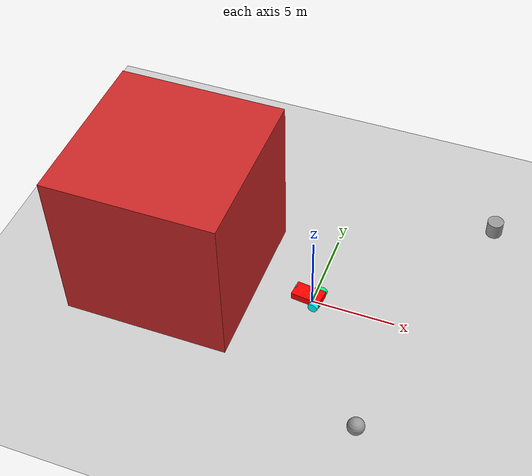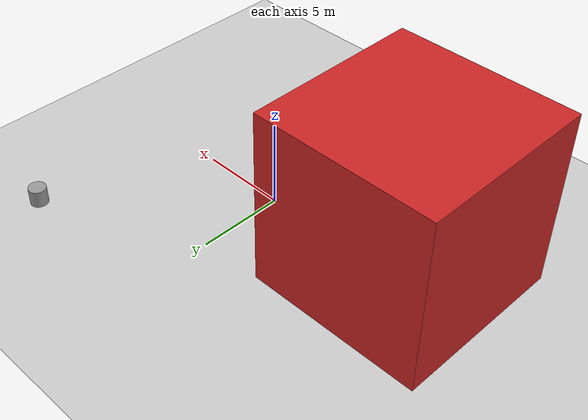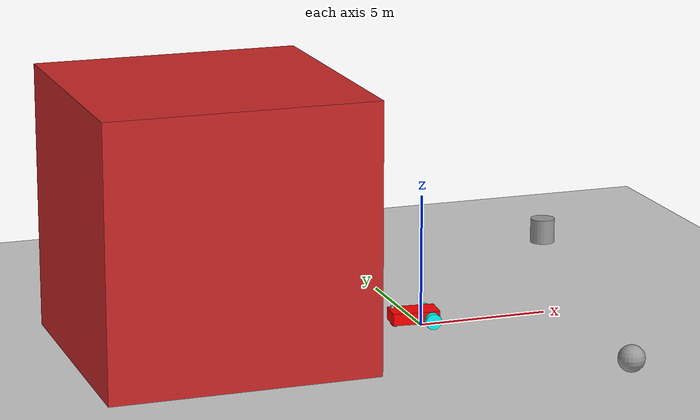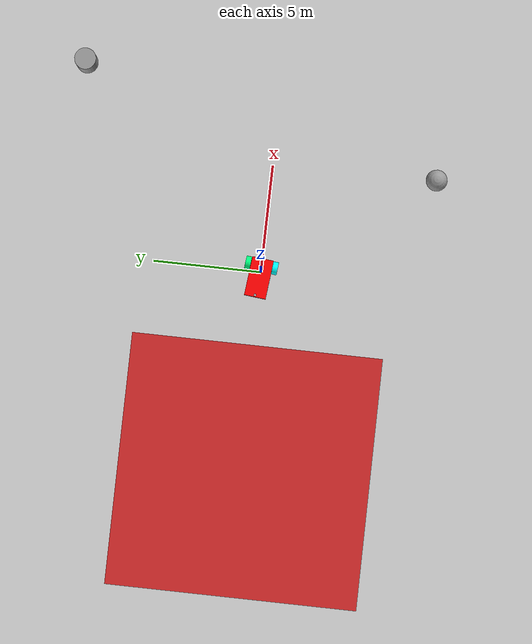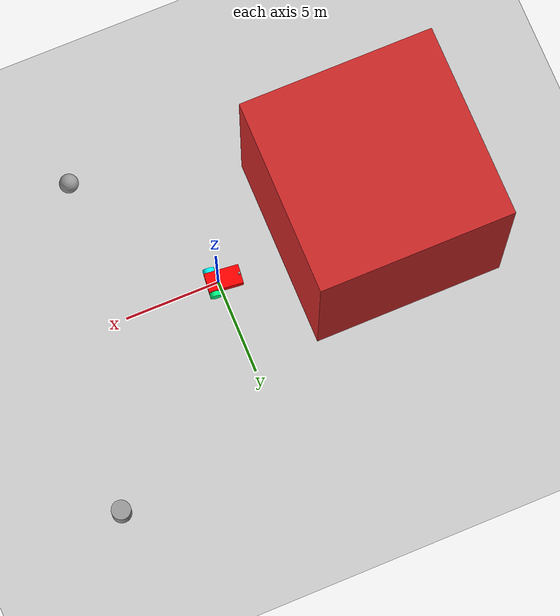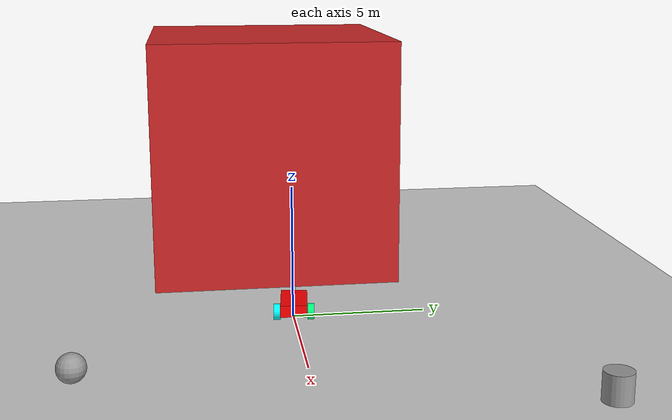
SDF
<sdf version="1.6">
 <world name="default">
  <model name="ground_plane">
   <static>1</static>
   <link name="link">
    <collision name="collision">
     <geometry><plane><normal>0 0 1</normal><size>100 100</size></plane></geometry>
     <surface>
      <contact><collide_bitmask>65535</collide_bitmask></contact>
      <friction><ode><mu>100</mu><mu2>50</mu2></ode></friction>
     </surface>
    </collision>
    <visual name="visual">
     <cast_shadows>0</cast_shadows>
     <geometry><plane><normal>0 0 1</normal><size>100 100</size></plane></geometry>
     <material>
      <script><uri>file://media/materials/scripts/gazebo.material</uri><name>Gazebo/Grey</name></script>
     </material>
    </visual>
   </link>
  </model>
  <model name="differential_drive_robot">
   <pose>-0.030289 0.036513 0.364824 0 -1.3e-05 -0.104539</pose>
   <link name="differential_drive_robot::link_0">
    <inertial>
     <mass>0.811541</mass>
     <inertia>
      <ixx>0.0813018</ixx>
      <ixy>0</ixy>
      <ixz>0</ixz>
      <iyy>0.233992</iyy>
      <iyz>0</iyz>
      <izz>0.287947</izz>
     </inertia>
    </inertial>
    <pose>-0.252875 -0.007186 0.035183 0 -0 0</pose>
    <visual name="visual">
     <geometry><box><size>1.80493 1 0.44965</size></box></geometry>
     <material>
      <ambient>1 0 0 1</ambient>
      <diffuse>1 0 0 1</diffuse>
      <specular>0.1 0.1 0.1 1</specular>
      <emissive>0 0 0 0</emissive>
     </material>
    </visual>
    <collision name="collision">
     <geometry><box><size>1.80493 1 0.44965</size></box></geometry>
     <surface>
      <friction>
       <ode><mu>1</mu><mu2>1</mu2><fdir1>0 0 0</fdir1><slip1>0</slip1><slip2>0</slip2></ode>
       <torsional>
        <coefficient>1</coefficient>
        <patch_radius>0</patch_radius>
        <surface_radius>0</surface_radius>
        <use_patch_radius>1</use_patch_radius>
        <ode><slip>0</slip></ode>
       </torsional>
      </friction>
      <bounce><restitution_coefficient>0</restitution_coefficient><threshold>1e+06</threshold></bounce>
      <contact>
       <collide_without_contact>0</collide_without_contact>
       <collide_without_contact_bitmask>1</collide_without_contact_bitmask>
       <collide_bitmask>1</collide_bitmask>
       <ode>
        <soft_cfm>0</soft_cfm>
        <soft_erp>0.2</soft_erp>
        <kp>1e+13</kp>
        <kd>1</kd>
        <max_vel>0.01</max_vel>
        <min_depth>0</min_depth>
       </ode>
       <bullet>
        <split_impulse>1</split_impulse>
        <split_impulse_penetration_threshold>-0.01</split_impulse_penetration_threshold>
        <soft_cfm>0</soft_cfm>
        <soft_erp>0.2</soft_erp>
        <kp>1e+13</kp>
        <kd>1</kd>
       </bullet>
      </contact>
     </surface>
    </collision>
   </link>
   <link name="differential_drive_robot::link_1">
    <inertial>
     <mass>1</mass>
     <inertia><ixx>0.145833</ixx><ixy>0</ixy><ixz>0</ixz><iyy>0.145833</iyy><iyz>0</iyz><izz>0.125</izz></inertia>
    </inertial>
    <pose>0.349591 0.632843 -0.064817 1.5707 -0 0</pose>
    <visual name="visual">
     <geometry><cylinder><radius>0.3</radius><length>0.25</length></cylinder></geometry>
     <material>
      <ambient>0 1 0.5 1</ambient>
      <diffuse>0 1 0.5 1</diffuse>
      <specular>0.1 0.1 0.1 1</specular>
      <emissive>0 0 0 0</emissive>
     </material>
    </visual>
    <collision name="collision">
     <geometry><cylinder><radius>0.3</radius><length>0.25</length></cylinder></geometry>
     <surface>
      <friction>
       <ode><mu>1</mu><mu2>1</mu2><fdir1>0 0 0</fdir1><slip1>0</slip1><slip2>0</slip2></ode>
       <torsional>
        <coefficient>1</coefficient>
        <patch_radius>0</patch_radius>
        <surface_radius>0</surface_radius>
        <use_patch_radius>1</use_patch_radius>
        <ode><slip>0</slip></ode>
       </torsional>
      </friction>
      <bounce><restitution_coefficient>0</restitution_coefficient><threshold>1e+06</threshold></bounce>
      <contact>
       <collide_without_contact>0</collide_without_contact>
       <collide_without_contact_bitmask>1</collide_without_contact_bitmask>
       <collide_bitmask>1</collide_bitmask>
       <ode>
        <soft_cfm>0</soft_cfm>
        <soft_erp>0.2</soft_erp>
        <kp>1e+13</kp>
        <kd>1</kd>
        <max_vel>0.01</max_vel>
        <min_depth>0</min_depth>
       </ode>
       <bullet>
        <split_impulse>1</split_impulse>
        <split_impulse_penetration_threshold>-0.01</split_impulse_penetration_threshold>
        <soft_cfm>0</soft_cfm>
        <soft_erp>0.2</soft_erp>
        <kp>1e+13</kp>
        <kd>1</kd>
       </bullet>
      </contact>
     </surface>
    </collision>
   </link>
   <link name="differential_drive_robot::link_1_clone">
    <inertial>
     <mass>1</mass>
     <inertia><ixx>0.145833</ixx><ixy>0</ixy><ixz>0</ixz><iyy>0.145833</iyy><iyz>0</iyz><izz>0.125</izz></inertia>
    </inertial>
    <pose>0.349591 -0.632215 -0.064817 1.5707 -0 0</pose>
    <visual name="visual">
     <geometry><cylinder><radius>0.3</radius><length>0.25</length></cylinder></geometry>
     <material>
      <ambient>0 1 1 1</ambient>
      <diffuse>0 1 1 1</diffuse>
      <specular>0.1 0.1 0.1 1</specular>
      <emissive>0 0 0 0</emissive>
     </material>
    </visual>
    <collision name="collision">
     <geometry><cylinder><radius>0.3</radius><length>0.25</length></cylinder></geometry>
     <surface>
      <friction>
       <ode><mu>1</mu><mu2>1</mu2><fdir1>0 0 0</fdir1><slip1>0</slip1><slip2>0</slip2></ode>
       <torsional>
        <coefficient>1</coefficient>
        <patch_radius>0</patch_radius>
        <surface_radius>0</surface_radius>
        <use_patch_radius>1</use_patch_radius>
        <ode><slip>0</slip></ode>
       </torsional>
      </friction>
      <bounce><restitution_coefficient>0</restitution_coefficient><threshold>1e+06</threshold></bounce>
      <contact>
       <collide_without_contact>0</collide_without_contact>
       <collide_without_contact_bitmask>1</collide_without_contact_bitmask>
       <collide_bitmask>1</collide_bitmask>
       <ode>
        <soft_cfm>0</soft_cfm>
        <soft_erp>0.2</soft_erp>
        <kp>1e+13</kp>
        <kd>1</kd>
        <max_vel>0.01</max_vel>
        <min_depth>0</min_depth>
       </ode>
       <bullet>
        <split_impulse>1</split_impulse>
        <split_impulse_penetration_threshold>-0.01</split_impulse_penetration_threshold>
        <soft_cfm>0</soft_cfm>
        <soft_erp>0.2</soft_erp>
        <kp>1e+13</kp>
        <kd>1</kd>
       </bullet>
      </contact>
     </surface>
    </collision>
   </link>
   <link name="differential_drive_robot::link_2">
    <inertial>
     <mass>1</mass>
     <inertia><ixx>0.1</ixx><ixy>0</ixy><ixz>0</ixz><iyy>0.1</iyy><iyz>0</iyz><izz>0.1</izz></inertia>
    </inertial>
    <pose>-0.955341 -0.007186 -0.164817 0 -0 0</pose>
    <visual name="visual">
     <geometry><sphere><radius>0.2</radius></sphere></geometry>
     <material>
      <ambient>1 0 1 1</ambient>
      <diffuse>1 0 1 1</diffuse>
      <specular>0.1 0.1 0.1 1</specular>
      <emissive>0 0 0 0</emissive>
     </material>
    </visual>
    <collision name="collision">
     <geometry><sphere><radius>0.2</radius></sphere></geometry>
     <surface>
      <friction>
       <ode><mu>1</mu><mu2>1</mu2><fdir1>0 0 0</fdir1><slip1>0</slip1><slip2>0</slip2></ode>
       <torsional>
        <coefficient>1</coefficient>
        <patch_radius>0</patch_radius>
        <surface_radius>0</surface_radius>
        <use_patch_radius>1</use_patch_radius>
        <ode><slip>0</slip></ode>
       </torsional>
      </friction>
      <bounce><restitution_coefficient>0</restitution_coefficient><threshold>1e+06</threshold></bounce>
      <contact>
       <collide_without_contact>0</collide_without_contact>
       <collide_without_contact_bitmask>1</collide_without_contact_bitmask>
       <collide_bitmask>1</collide_bitmask>
       <ode>
        <soft_cfm>0</soft_cfm>
        <soft_erp>0.2</soft_erp>
        <kp>1e+13</kp>
        <kd>1</kd>
        <max_vel>0.01</max_vel>
        <min_depth>0</min_depth>
       </ode>
       <bullet>
        <split_impulse>1</split_impulse>
        <split_impulse_penetration_threshold>-0.01</split_impulse_penetration_threshold>
        <soft_cfm>0</soft_cfm>
        <soft_erp>0.2</soft_erp>
        <kp>1e+13</kp>
        <kd>1</kd>
       </bullet>
      </contact>
     </surface>
    </collision>
   </link>
   <joint name="differential_drive_robot::link_0_JOINT_0" type="revolute">
    <parent>differential_drive_robot::link_0</parent>
    <child>differential_drive_robot::link_1</child>
    <axis>
     <xyz>0 0 1</xyz>
     <use_parent_model_frame>0</use_parent_model_frame>
     <limit>
      <lower>-1.79769e+308</lower>
      <upper>1.79769e+308</upper>
      <effort>-1</effort>
      <velocity>-1</velocity>
     </limit>
     <dynamics>
      <spring_reference>0</spring_reference>
      <spring_stiffness>0</spring_stiffness>
      <damping>0</damping>
      <friction>0</friction>
     </dynamics>
    </axis>
    <physics>
     <ode><limit><cfm>0</cfm><erp>0.2</erp></limit><suspension><cfm>0</cfm><erp>0.2</erp></suspension></ode>
    </physics>
   </joint>
   <joint name="differential_drive_robot::link_0_JOINT_1" type="revolute">
    <parent>differential_drive_robot::link_0</parent>
    <child>differential_drive_robot::link_1_clone</child>
    <axis>
     <xyz>0 0 -1</xyz>
     <use_parent_model_frame>0</use_parent_model_frame>
     <limit>
      <lower>-1.79769e+308</lower>
      <upper>1.79769e+308</upper>
      <effort>-1</effort>
      <velocity>-1</velocity>
     </limit>
     <dynamics>
      <spring_reference>0</spring_reference>
      <spring_stiffness>0</spring_stiffness>
      <damping>0</damping>
      <friction>0</friction>
     </dynamics>
    </axis>
    <physics>
     <ode><limit><cfm>0</cfm><erp>0.2</erp></limit><suspension><cfm>0</cfm><erp>0.2</erp></suspension></ode>
    </physics>
   </joint>
   <joint name="differential_drive_robot::link_0_JOINT_2" type="ball">
    <parent>differential_drive_robot::link_0</parent>
    <child>differential_drive_robot::link_2</child>
    <physics>
     <ode><limit><cfm>0</cfm><erp>0.2</erp></limit><suspension><cfm>0</cfm><erp>0.2</erp></suspension></ode>
    </physics>
   </joint>
   <static>0</static>
   <link name="panoramic_camera::link">
    <inertial>
     <mass>0.1</mass>
     <inertia><ixx>0.0001</ixx><ixy>0</ixy><ixz>0</ixz><iyy>0.0001</iyy><iyz>0</iyz><izz>0.0001</izz></inertia>
    </inertial>
    <collision name="collision"><geometry><box><size>0.1 0.1 0.1</size></box></geometry></collision>
    <visual name="visual"><geometry><box><size>0.1 0.1 0.1</size></box></geometry></visual>
    <sensor name="camera" type="wideanglecamera">
     <camera name="__default__">
      <horizontal_fov>6.2831</horizontal_fov>
      <image><width>640</width><height>640</height><format>B8G8R8</format></image>
      <clip><near>0.1</near><far>100</far></clip>
      <lens>
       <type>custom</type>
       <scale_to_hfov>0</scale_to_hfov>
       <cutoff_angle>6.2831</cutoff_angle>
       <env_texture_size>512</env_texture_size>
       <custom_function><c1>1.05</c1><c2>4</c2><f>2</f><fun>tan</fun></custom_function>
      </lens>
     </camera>
     <always_on>1</always_on>
     <update_rate>30</update_rate>
    </sensor>
    <pose>-1.07303 0 0.4 0 -1.5707 0</pose>
   </link>
   <joint name="panoramic_camera::link_0_JOINT_0_0" type="fixed">
    <parent>differential_drive_robot::link_0</parent>
    <child>panoramic_camera::link</child>
    <physics>
     <ode><limit><cfm>0</cfm><erp>0.2</erp></limit><suspension><cfm>0</cfm><erp>0.2</erp></suspension></ode>
    </physics>
   </joint>
   <plugin name="differential_drive_control" filename="libdifferential_drive_plugin.so">
    <velocity>0</velocity>
   </plugin>
  </model>
  <gravity>0 0 -9.8</gravity>
  <magnetic_field>6e-06 2.3e-05 -4.2e-05</magnetic_field>
  <atmosphere type="adiabatic"/>
  <physics name="default_physics" default="0" type="ode">
   <max_step_size>0.001</max_step_size>
   <real_time_factor>1</real_time_factor>
   <real_time_update_rate>1000</real_time_update_rate>
  </physics>
  <scene><ambient>0.4 0.4 0.4 1</ambient><background>0.7 0.7 0.7 1</background><shadows>1</shadows></scene>
  <spherical_coordinates>
   <surface_model>EARTH_WGS84</surface_model>
   <latitude_deg>0</latitude_deg>
   <longitude_deg>0</longitude_deg>
   <elevation>0</elevation>
   <heading_deg>0</heading_deg>
  </spherical_coordinates>
  <model name="unit_box">
   <pose>-8.44623 -0.259391 4.99999 0 1e-06 0.001995</pose>
   <link name="link">
    <inertial>
     <mass>1</mass>
     <inertia>
      <ixx>0.166667</ixx>
      <ixy>0</ixy>
      <ixz>0</ixz>
      <iyy>0.166667</iyy>
      <iyz>0</iyz>
      <izz>0.166667</izz>
     </inertia>
    </inertial>
    <collision name="collision"><geometry><box><size>10 10 10</size></box></geometry></collision>
    <visual name="visual">
     <geometry><box><size>10 10 10</size></box></geometry>
     <material>
      <script><name>Gazebo/Red</name><uri>file://media/materials/scripts/gazebo.material</uri></script>
     </material>
    </visual>
   </link>
  </model>
  <model name="unit_cylinder">
   <pose>8.86747 9.11965 0.499993 -3e-06 -4e-06 -0</pose>
   <link name="link">
    <inertial>
     <mass>1</mass>
     <inertia><ixx>0.145833</ixx><ixy>0</ixy><ixz>0</ixz><iyy>0.145833</iyy><iyz>0</iyz><izz>0.125</izz></inertia>
    </inertial>
    <collision name="collision">
     <geometry><cylinder><radius>0.5</radius><length>1</length></cylinder></geometry>
    </collision>
    <visual name="visual">
     <geometry><cylinder><radius>0.5</radius><length>1</length></cylinder></geometry>
     <material>
      <script><name>Gazebo/Grey</name><uri>file://media/materials/scripts/gazebo.material</uri></script>
     </material>
    </visual>
   </link>
  </model>
  <model name="unit_sphere">
   <pose>5.10408 -7.61756 0.5 0 -0 0</pose>
   <link name="link">
    <inertial>
     <mass>1</mass>
     <inertia><ixx>0.1</ixx><ixy>0</ixy><ixz>0</ixz><iyy>0.1</iyy><iyz>0</iyz><izz>0.1</izz></inertia>
    </inertial>
    <collision name="collision"><geometry><sphere><radius>0.5</radius></sphere></geometry></collision>
    <visual name="visual">
     <geometry><sphere><radius>0.5</radius></sphere></geometry>
     <material>
      <script><name>Gazebo/Grey</name><uri>file://media/materials/scripts/gazebo.material</uri></script>
     </material>
    </visual>
   </link>
  </model>
  <audio><device>default</device></audio>
 </world>
</sdf>
